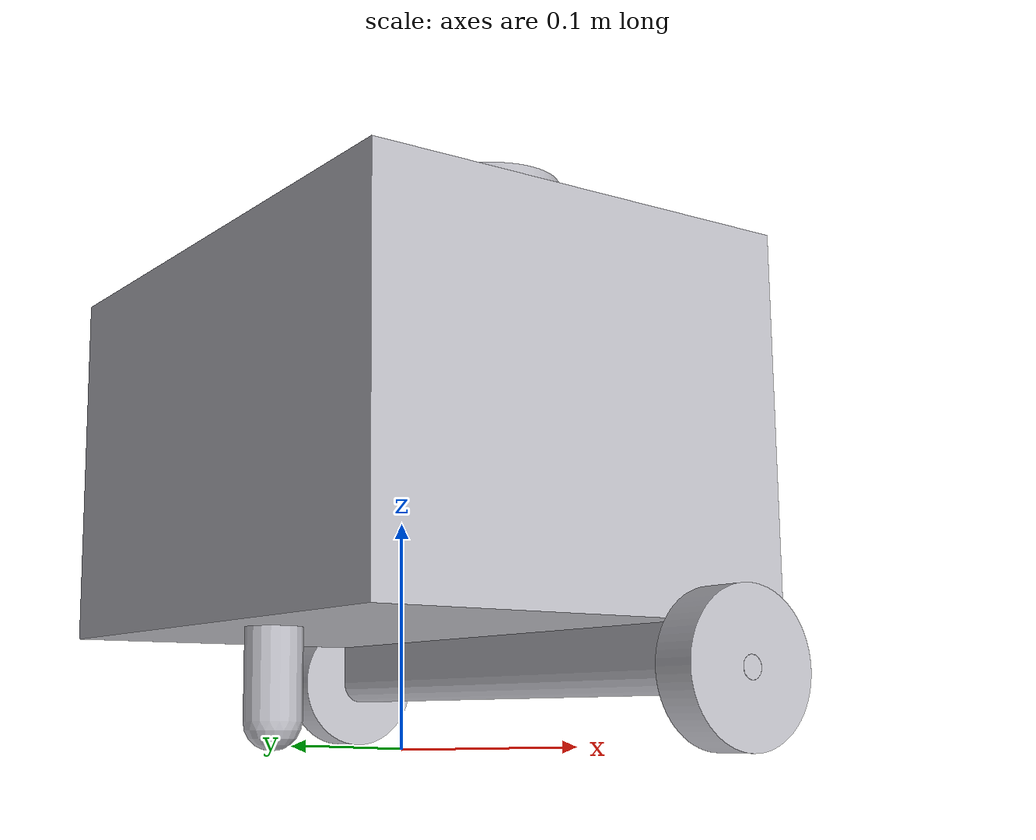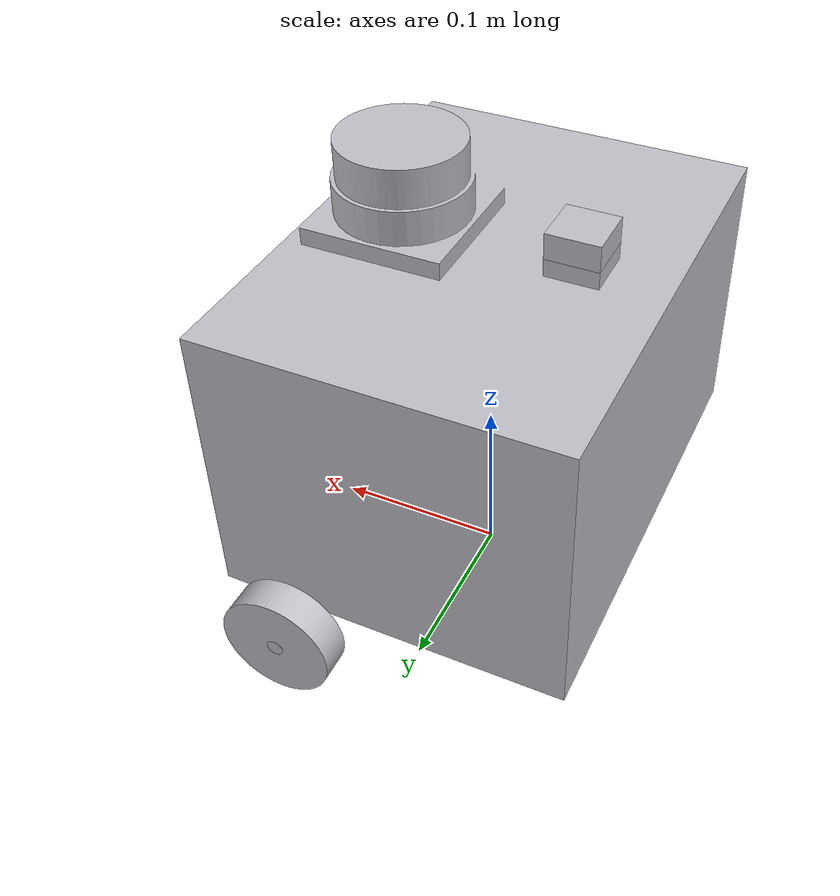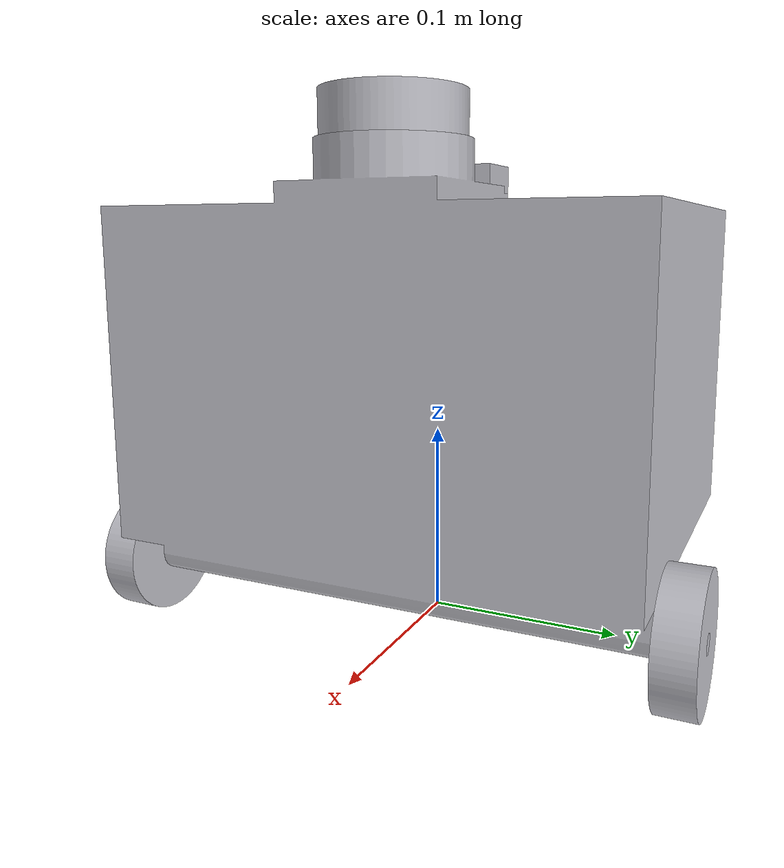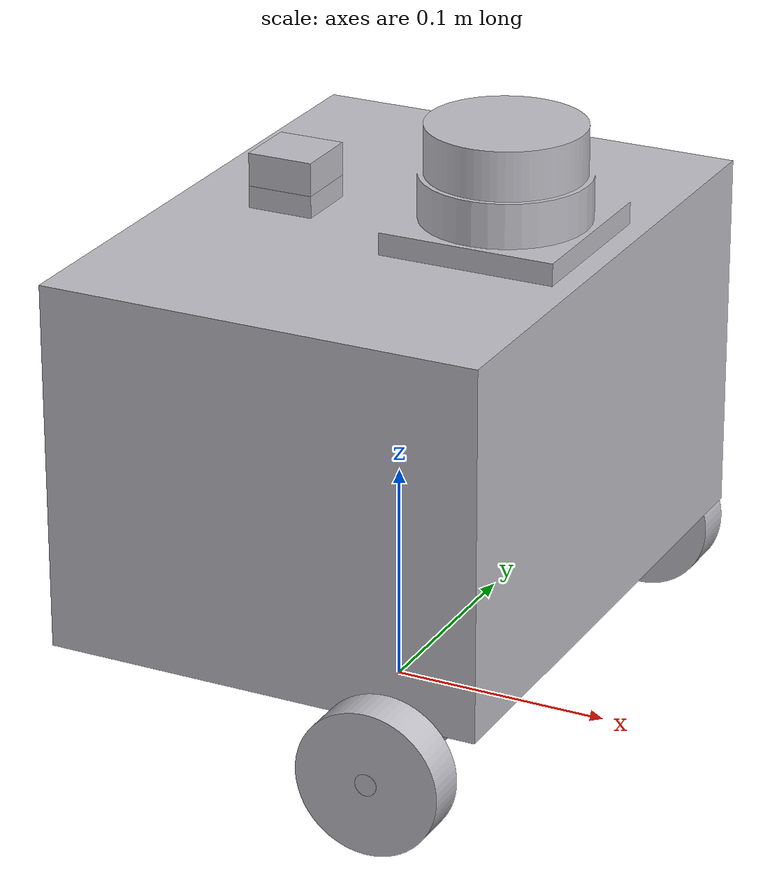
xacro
<?xml version="1.0" ?>
<robot name="agv" xmlns:xacro="http://www.ros.org/wiki/xacro">

<xacro:include filename="$(find agv_description)/urdf/materials.xacro" />
<xacro:include filename="$(find agv_description)/urdf/agv.trans" />
<xacro:include filename="$(find agv_description)/urdf/agv.gazebo" />
<link name="base_link">
  <inertial>
    <origin xyz="0.0015749721113432686 8.873602091093253e-08 0.13438701314465032" rpy="0 0 0"/>
    <mass value="71.6563570563554"/>
    <inertia ixx="0.595019" iyy="0.421933" izz="0.650382" ixy="0.0" iyz="-1e-06" ixz="-0.000138"/>
  </inertial>
  <visual>
    <origin xyz="0 0 0" rpy="0 0 0"/>
    <geometry>
      <mesh filename="package://agv_description/meshes/base_link.stl" scale="0.001 0.001 0.001"/>
    </geometry>
    <material name="silver"/>
  </visual>
  <collision>
    <origin xyz="0 0 0" rpy="0 0 0"/>
    <geometry>
      <mesh filename="package://agv_description/meshes/base_link.stl" scale="0.001 0.001 0.001"/>
    </geometry>
  </collision>
</link>

<link name="lidar_1">
  <inertial>
    <origin xyz="0.0 0.0 0.010999999999999954" rpy="0 0 0"/>
    <mass value="0.6646274878118223"/>
    <inertia ixx="0.00023" iyy="0.00023" izz="0.000407" ixy="0.0" iyz="-0.0" ixz="-0.0"/>
  </inertial>
  <visual>
    <origin xyz="-0.05 -0.0 -0.2475" rpy="0 0 0"/>
    <geometry>
      <mesh filename="package://agv_description/meshes/lidar_1.stl" scale="0.001 0.001 0.001"/>
    </geometry>
    <material name="silver"/>
  </visual>
  <collision>
    <origin xyz="-0.05 -0.0 -0.2475" rpy="0 0 0"/>
    <geometry>
      <mesh filename="package://agv_description/meshes/lidar_1.stl" scale="0.001 0.001 0.001"/>
    </geometry>
  </collision>
</link>

<link name="right__1">
  <inertial>
    <origin xyz="-1.264266469291897e-14 0.00949999999999998 -6.938893903907228e-18" rpy="0 0 0"/>
    <mass value="0.48321131129175837"/>
    <inertia ixx="0.000145" iyy="0.000261" izz="0.000145" ixy="-0.0" iyz="-0.0" ixz="-0.0"/>
  </inertial>
  <visual>
    <origin xyz="-0.06 0.1525 -0.0325" rpy="0 0 0"/>
    <geometry>
      <mesh filename="package://agv_description/meshes/right__1.stl" scale="0.001 0.001 0.001"/>
    </geometry>
    <material name="silver"/>
  </visual>
  <collision>
    <origin xyz="-0.06 0.1525 -0.0325" rpy="0 0 0"/>
    <geometry>
      <mesh filename="package://agv_description/meshes/right__1.stl" scale="0.001 0.001 0.001"/>
    </geometry>
  </collision>
</link>

<link name="left_1">
  <inertial>
    <origin xyz="1.2732870313669764e-14 -0.00949999999999998 -6.938893903907228e-18" rpy="0 0 0"/>
    <mass value="0.48321131129175837"/>
    <inertia ixx="0.000145" iyy="0.000261" izz="0.000145" ixy="0.0" iyz="0.0" ixz="0.0"/>
  </inertial>
  <visual>
    <origin xyz="-0.06 -0.1525 -0.0325" rpy="0 0 0"/>
    <geometry>
      <mesh filename="package://agv_description/meshes/left_1.stl" scale="0.001 0.001 0.001"/>
    </geometry>
    <material name="silver"/>
  </visual>
  <collision>
    <origin xyz="-0.06 -0.1525 -0.0325" rpy="0 0 0"/>
    <geometry>
      <mesh filename="package://agv_description/meshes/left_1.stl" scale="0.001 0.001 0.001"/>
    </geometry>
  </collision>
</link>

<link name="imu_1">
  <inertial>
    <origin xyz="1.3877787807814457e-17 3.40168431617327e-18 0.007499999999999979" rpy="0 0 0"/>
    <mass value="0.10597499999999999"/>
    <inertia ixx="1e-05" iyy="1e-05" izz="1.6e-05" ixy="-0.0" iyz="0.0" ixz="0.0"/>
  </inertial>
  <visual>
    <origin xyz="0.05 -9e-05 -0.2275" rpy="0 0 0"/>
    <geometry>
      <mesh filename="package://agv_description/meshes/imu_1.stl" scale="0.001 0.001 0.001"/>
    </geometry>
    <material name="silver"/>
  </visual>
  <collision>
    <origin xyz="0.05 -9e-05 -0.2275" rpy="0 0 0"/>
    <geometry>
      <mesh filename="package://agv_description/meshes/imu_1.stl" scale="0.001 0.001 0.001"/>
    </geometry>
  </collision>
</link>

<joint name="Rigid 1" type="fixed">
  <origin xyz="0.05 0.0 0.2475" rpy="0 0 0"/>
  <parent link="base_link"/>
  <child link="lidar_1"/>
</joint>

<joint name="Revolute 2" type="continuous">
  <origin xyz="0.06 -0.1525 0.0325" rpy="0 0 0"/>
  <parent link="base_link"/>
  <child link="right__1"/>
  <axis xyz="0.0 -1.0 0.0"/>
</joint>

<joint name="Revolute 3" type="continuous">
  <origin xyz="0.06 0.1525 0.0325" rpy="0 0 0"/>
  <parent link="base_link"/>
  <child link="left_1"/>
  <axis xyz="0.0 1.0 0.0"/>
</joint>

<joint name="Rigid 4" type="fixed">
  <origin xyz="-0.05 9e-05 0.2275" rpy="0 0 0"/>
  <parent link="base_link"/>
  <child link="imu_1"/>
</joint>

</robot>

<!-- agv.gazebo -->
<robot name="agv" xmlns:xacro="http://www.ros.org/wiki/xacro" >

<xacro:property name="body_color" value="Gazebo/Silver" />

<gazebo>
  <plugin name="control" filename="libgazebo_ros_control.so"/>
</gazebo>
<gazebo reference="base_link">
  <material>${body_color}</material>
  <mu1>0.2</mu1>
  <mu2>0.2</mu2>
  <selfCollide>true</selfCollide>
  <gravity>true</gravity>
</gazebo>

<gazebo reference="lidar_1">
  <material>${body_color}</material>
  <mu1>0.2</mu1>
  <mu2>0.2</mu2>
  <selfCollide>true</selfCollide>
</gazebo>

<gazebo reference="right__1">
  <material>${body_color}</material>
  <mu1>0.2</mu1>
  <mu2>0.2</mu2>
  <selfCollide>true</selfCollide>
</gazebo>

<gazebo reference="left_1">
  <material>${body_color}</material>
  <mu1>0.2</mu1>
  <mu2>0.2</mu2>
  <selfCollide>true</selfCollide>
</gazebo>

<gazebo reference="imu_1">
  <material>${body_color}</material>
  <mu1>0.2</mu1>
  <mu2>0.2</mu2>
  <selfCollide>true</selfCollide>
</gazebo>

</robot>
